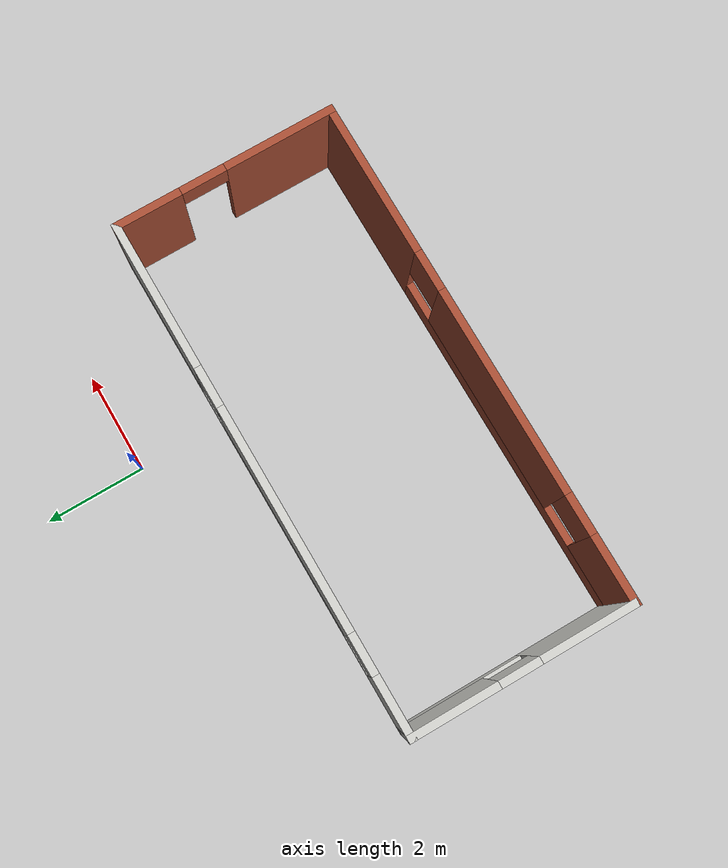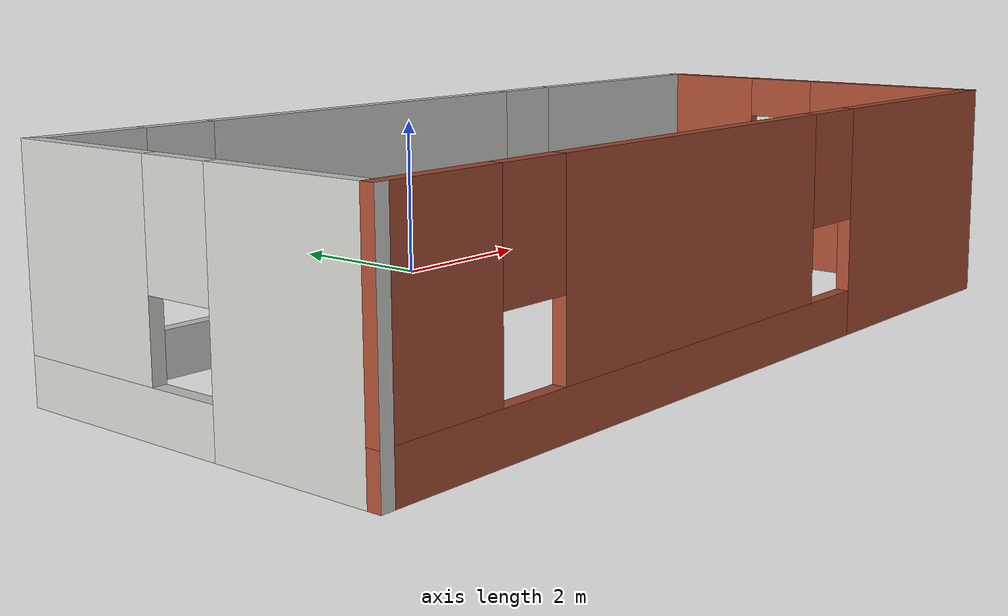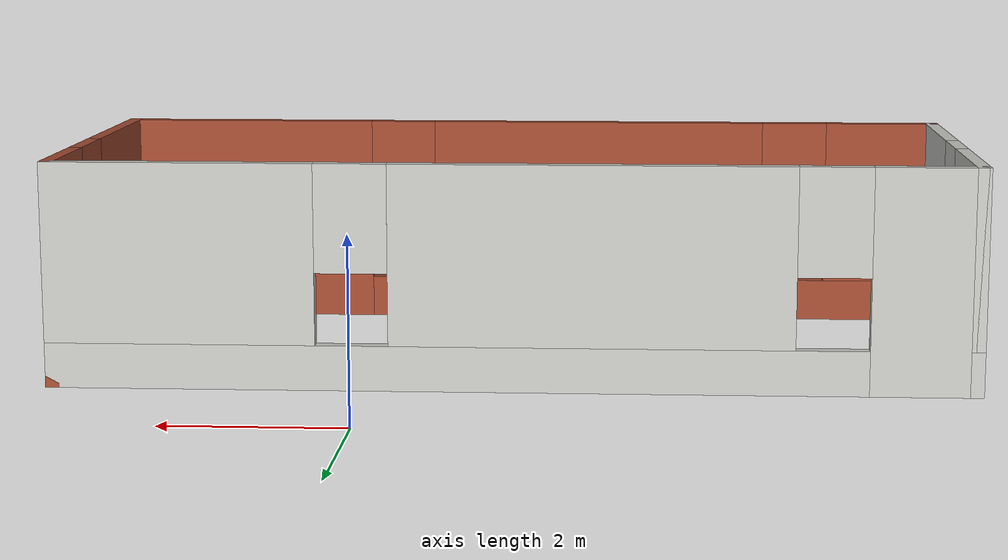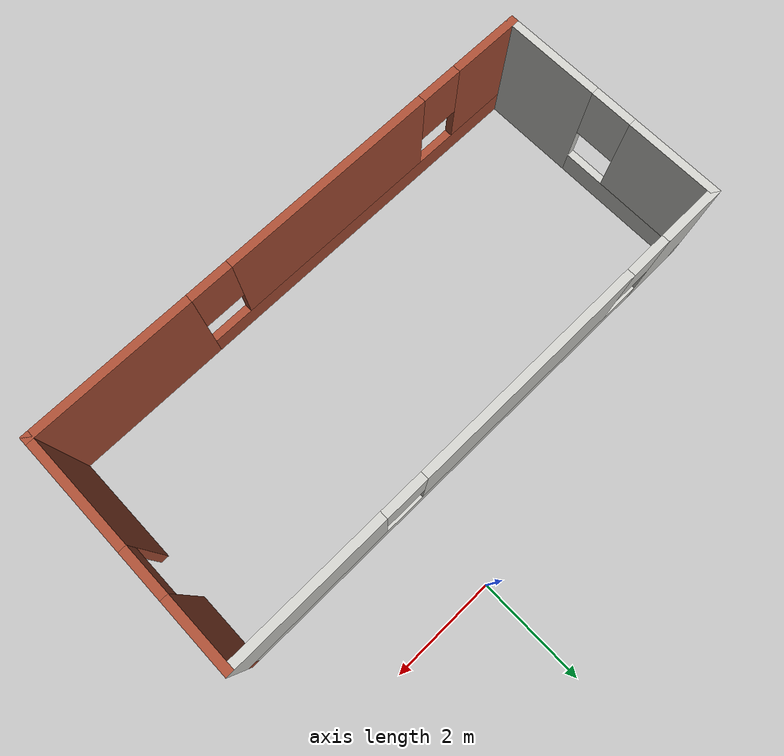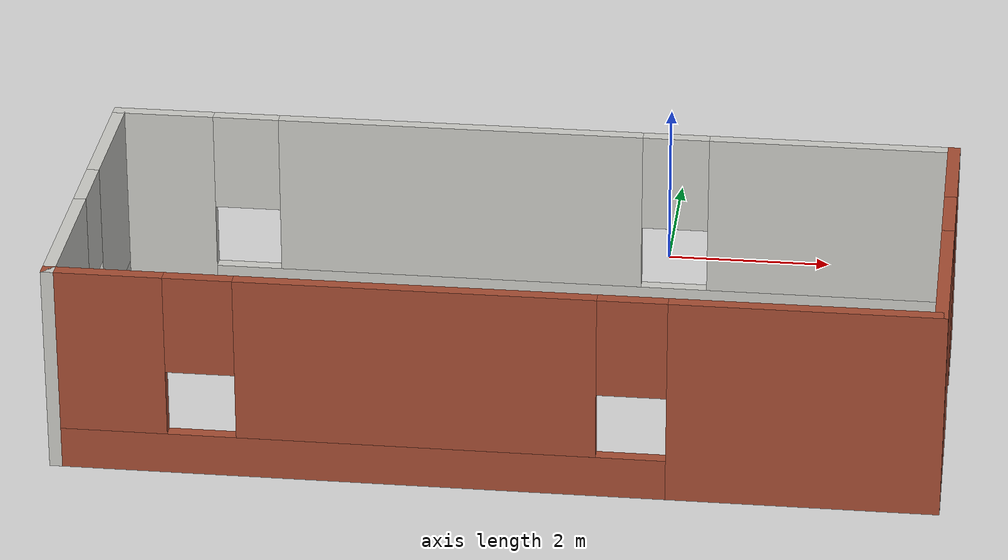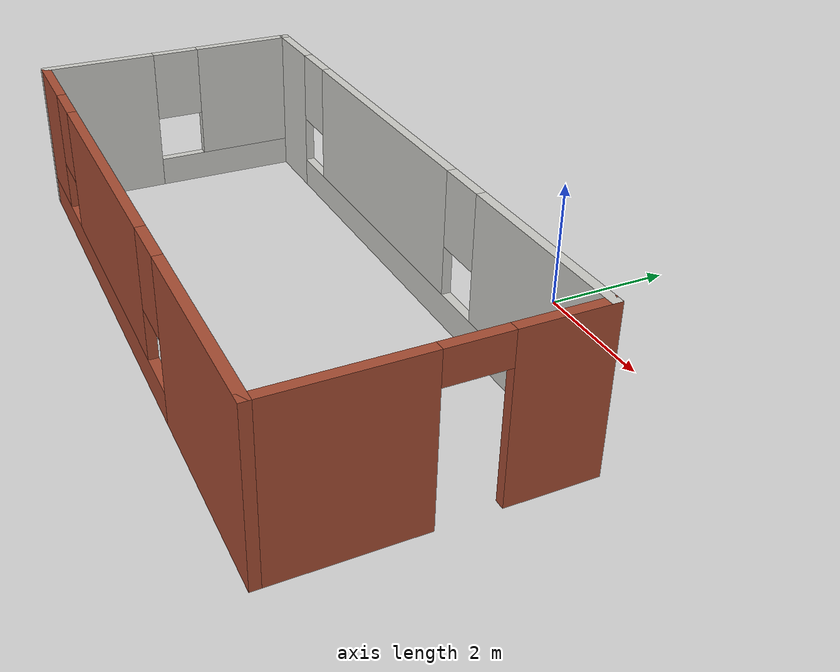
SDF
<?xml version='1.0'?>
<sdf version='1.6'>
  <model name='first_building'>
    <pose frame=''>-1.53 -3.965 0 0 -0 0</pose>
    <link name='Wall_0'>
      <pose frame=''>0 2.175 0 0 -0 0</pose>
      <visual name='Wall_0_Visual_0'>
        <pose frame=''>-4.50845 0 1.25 0 -0 0</pose>
        <geometry>
          <box>
            <size>1.2331 0.15 2.5</size>
          </box>
        </geometry>
        <material>
          <script>
            <uri>file://media/materials/scripts/gazebo.material</uri>
            <name>Gazebo/CeilingTiled</name>
          </script>
          <ambient>1 0.764706 0.305882 1</ambient>
        </material>
        <meta>
          <layer>0</layer>
        </meta>
      </visual>
      <collision name='Wall_0_Collision_0'>
        <geometry>
          <box>
            <size>1.2331 0.15 2.5</size>
          </box>
        </geometry>
        <pose frame=''>-4.50845 0 1.25 0 -0 0</pose>
      </collision>
      <visual name='Wall_0_Visual_1'>
        <pose frame=''>0.616552 0 0.25 0 -0 0</pose>
        <geometry>
          <box>
            <size>9.01689 0.15 0.5</size>
          </box>
        </geometry>
        <material>
          <script>
            <uri>file://media/materials/scripts/gazebo.material</uri>
            <name>Gazebo/CeilingTiled</name>
          </script>
          <ambient>1 0.764706 0.305882 1</ambient>
        </material>
        <meta>
          <layer>0</layer>
        </meta>
      </visual>
      <collision name='Wall_0_Collision_1'>
        <geometry>
          <box>
            <size>9.01689 0.15 0.5</size>
          </box>
        </geometry>
        <pose frame=''>0.616552 0 0.25 0 -0 0</pose>
      </collision>
      <visual name='Wall_0_Visual_2'>
        <pose frame=''>-0.880335 0 1.5 0 -0 0</pose>
        <geometry>
          <box>
            <size>4.42312 0.15 2</size>
          </box>
        </geometry>
        <material>
          <script>
            <uri>file://media/materials/scripts/gazebo.material</uri>
            <name>Gazebo/CeilingTiled</name>
          </script>
          <ambient>1 0.764706 0.305882 1</ambient>
        </material>
        <meta>
          <layer>0</layer>
        </meta>
      </visual>
      <collision name='Wall_0_Collision_2'>
        <geometry>
          <box>
            <size>4.42312 0.15 2</size>
          </box>
        </geometry>
        <pose frame=''>-0.880335 0 1.5 0 -0 0</pose>
      </collision>
      <visual name='Wall_0_Visual_3'>
        <pose frame=''>3.62811 0 1.5 0 -0 0</pose>
        <geometry>
          <box>
            <size>2.99377 0.15 2</size>
          </box>
        </geometry>
        <material>
          <script>
            <uri>file://media/materials/scripts/gazebo.material</uri>
            <name>Gazebo/CeilingTiled</name>
          </script>
          <ambient>1 0.764706 0.305882 1</ambient>
        </material>
        <meta>
          <layer>0</layer>
        </meta>
      </visual>
      <collision name='Wall_0_Collision_3'>
        <geometry>
          <box>
            <size>2.99377 0.15 2</size>
          </box>
        </geometry>
        <pose frame=''>3.62811 0 1.5 0 -0 0</pose>
      </collision>
      <visual name='Wall_0_Visual_4'>
        <pose frame=''>-3.49189 0 1.9 0 -0 0</pose>
        <geometry>
          <box>
            <size>0.8 0.15 1.2</size>
          </box>
        </geometry>
        <material>
          <script>
            <uri>file://media/materials/scripts/gazebo.material</uri>
            <name>Gazebo/CeilingTiled</name>
          </script>
          <ambient>1 0.764706 0.305882 1</ambient>
        </material>
        <meta>
          <layer>0</layer>
        </meta>
      </visual>
      <collision name='Wall_0_Collision_4'>
        <geometry>
          <box>
            <size>0.8 0.15 1.2</size>
          </box>
        </geometry>
        <pose frame=''>-3.49189 0 1.9 0 -0 0</pose>
      </collision>
      <visual name='Wall_0_Visual_5'>
        <pose frame=''>1.73123 0 1.9 0 -0 0</pose>
        <geometry>
          <box>
            <size>0.8 0.15 1.2</size>
          </box>
        </geometry>
        <material>
          <script>
            <uri>file://media/materials/scripts/gazebo.material</uri>
            <name>Gazebo/CeilingTiled</name>
          </script>
          <ambient>1 0.764706 0.305882 1</ambient>
        </material>
        <meta>
          <layer>0</layer>
        </meta>
      </visual>
      <collision name='Wall_0_Collision_5'>
        <geometry>
          <box>
            <size>0.8 0.15 1.2</size>
          </box>
        </geometry>
        <pose frame=''>1.73123 0 1.9 0 -0 0</pose>
      </collision>
    </link>
    <link name='Wall_1'>
      <pose frame=''>5.05 0 0 0 0 -1.5708</pose>
      <visual name='Wall_1_Visual_0'>
        <pose frame=''>-1.56729 0 1.25 0 -0 0</pose>
        <geometry>
          <box>
            <size>1.36542 0.15 2.5</size>
          </box>
        </geometry>
        <material>
          <script>
            <uri>file://media/materials/scripts/gazebo.material</uri>
            <name>Gazebo/Bricks</name>
          </script>
          <ambient>1 1 1 1</ambient>
        </material>
        <meta>
          <layer>0</layer>
        </meta>
      </visual>
      <collision name='Wall_1_Collision_0'>
        <geometry>
          <box>
            <size>1.36542 0.15 2.5</size>
          </box>
        </geometry>
        <pose frame=''>-1.56729 0 1.25 0 -0 0</pose>
      </collision>
      <visual name='Wall_1_Visual_1'>
        <pose frame=''>1.13271 0 1.25 0 -0 0</pose>
        <geometry>
          <box>
            <size>2.23458 0.15 2.5</size>
          </box>
        </geometry>
        <material>
          <script>
            <uri>file://media/materials/scripts/gazebo.material</uri>
            <name>Gazebo/Bricks</name>
          </script>
          <ambient>1 1 1 1</ambient>
        </material>
        <meta>
          <layer>0</layer>
        </meta>
      </visual>
      <collision name='Wall_1_Collision_1'>
        <geometry>
          <box>
            <size>2.23458 0.15 2.5</size>
          </box>
        </geometry>
        <pose frame=''>1.13271 0 1.25 0 -0 0</pose>
      </collision>
      <visual name='Wall_1_Visual_2'>
        <pose frame=''>-0.434579 0 2.25 0 -0 0</pose>
        <geometry>
          <box>
            <size>0.9 0.15 0.5</size>
          </box>
        </geometry>
        <material>
          <script>
            <uri>file://media/materials/scripts/gazebo.material</uri>
            <name>Gazebo/Bricks</name>
          </script>
          <ambient>1 1 1 1</ambient>
        </material>
        <meta>
          <layer>0</layer>
        </meta>
      </visual>
      <collision name='Wall_1_Collision_2'>
        <geometry>
          <box>
            <size>0.9 0.15 0.5</size>
          </box>
        </geometry>
        <pose frame=''>-0.434579 0 2.25 0 -0 0</pose>
      </collision>
    </link>
    <link name='Wall_2'>
      <pose frame=''>0 -2.175 0 0 -0 3.14159</pose>
      <visual name='Wall_2_Visual_0'>
        <pose frame=''>-3.56363 0 1.25 0 -0 0</pose>
        <geometry>
          <box>
            <size>3.12274 0.15 2.5</size>
          </box>
        </geometry>
        <material>
          <script>
            <uri>file://media/materials/scripts/gazebo.material</uri>
            <name>Gazebo/Bricks</name>
          </script>
          <ambient>1 1 1 1</ambient>
        </material>
        <meta>
          <layer>0</layer>
        </meta>
      </visual>
      <collision name='Wall_2_Collision_0'>
        <geometry>
          <box>
            <size>3.12274 0.15 2.5</size>
          </box>
        </geometry>
        <pose frame=''>-3.56363 0 1.25 0 -0 0</pose>
      </collision>
      <visual name='Wall_2_Visual_1'>
        <pose frame=''>1.56137 0 0.25 0 -0 0</pose>
        <geometry>
          <box>
            <size>7.12726 0.15 0.5</size>
          </box>
        </geometry>
        <material>
          <script>
            <uri>file://media/materials/scripts/gazebo.material</uri>
            <name>Gazebo/Bricks</name>
          </script>
          <ambient>1 1 1 1</ambient>
        </material>
        <meta>
          <layer>0</layer>
        </meta>
      </visual>
      <collision name='Wall_2_Collision_1'>
        <geometry>
          <box>
            <size>7.12726 0.15 0.5</size>
          </box>
        </geometry>
        <pose frame=''>1.56137 0 0.25 0 -0 0</pose>
      </collision>
      <visual name='Wall_2_Visual_2'>
        <pose frame=''>0.864214 0 1.5 0 -0 0</pose>
        <geometry>
          <box>
            <size>4.13295 0.15 2</size>
          </box>
        </geometry>
        <material>
          <script>
            <uri>file://media/materials/scripts/gazebo.material</uri>
            <name>Gazebo/Bricks</name>
          </script>
          <ambient>1 1 1 1</ambient>
        </material>
        <meta>
          <layer>0</layer>
        </meta>
      </visual>
      <collision name='Wall_2_Collision_2'>
        <geometry>
          <box>
            <size>4.13295 0.15 2</size>
          </box>
        </geometry>
        <pose frame=''>0.864214 0 1.5 0 -0 0</pose>
      </collision>
      <visual name='Wall_2_Visual_3'>
        <pose frame=''>4.42784 0 1.5 0 -0 0</pose>
        <geometry>
          <box>
            <size>1.39431 0.15 2</size>
          </box>
        </geometry>
        <material>
          <script>
            <uri>file://media/materials/scripts/gazebo.material</uri>
            <name>Gazebo/Bricks</name>
          </script>
          <ambient>1 1 1 1</ambient>
        </material>
        <meta>
          <layer>0</layer>
        </meta>
      </visual>
      <collision name='Wall_2_Collision_3'>
        <geometry>
          <box>
            <size>1.39431 0.15 2</size>
          </box>
        </geometry>
        <pose frame=''>4.42784 0 1.5 0 -0 0</pose>
      </collision>
      <visual name='Wall_2_Visual_4'>
        <pose frame=''>-1.60226 0 1.9 0 -0 0</pose>
        <geometry>
          <box>
            <size>0.8 0.15 1.2</size>
          </box>
        </geometry>
        <material>
          <script>
            <uri>file://media/materials/scripts/gazebo.material</uri>
            <name>Gazebo/Bricks</name>
          </script>
          <ambient>1 1 1 1</ambient>
        </material>
        <meta>
          <layer>0</layer>
        </meta>
      </visual>
      <collision name='Wall_2_Collision_4'>
        <geometry>
          <box>
            <size>0.8 0.15 1.2</size>
          </box>
        </geometry>
        <pose frame=''>-1.60226 0 1.9 0 -0 0</pose>
      </collision>
      <visual name='Wall_2_Visual_5'>
        <pose frame=''>3.33069 0 1.9 0 -0 0</pose>
        <geometry>
          <box>
            <size>0.8 0.15 1.2</size>
          </box>
        </geometry>
        <material>
          <script>
            <uri>file://media/materials/scripts/gazebo.material</uri>
            <name>Gazebo/Bricks</name>
          </script>
          <ambient>1 1 1 1</ambient>
        </material>
        <meta>
          <layer>0</layer>
        </meta>
      </visual>
      <collision name='Wall_2_Collision_5'>
        <geometry>
          <box>
            <size>0.8 0.15 1.2</size>
          </box>
        </geometry>
        <pose frame=''>3.33069 0 1.9 0 -0 0</pose>
      </collision>
    </link>
    <link name='Wall_3'>
      <pose frame=''>-5.05 0 0 0 -0 1.5708</pose>
      <visual name='Wall_3_Visual_0'>
        <pose frame=''>-1.28504 0 1.25 0 -0 0</pose>
        <geometry>
          <box>
            <size>1.92992 0.15 2.5</size>
          </box>
        </geometry>
        <material>
          <script>
            <uri>file://media/materials/scripts/gazebo.material</uri>
            <name>Gazebo/CeilingTiled</name>
          </script>
          <ambient>1 0.764706 0.305882 1</ambient>
        </material>
        <meta>
          <layer>0</layer>
        </meta>
      </visual>
      <collision name='Wall_3_Collision_0'>
        <geometry>
          <box>
            <size>1.92992 0.15 2.5</size>
          </box>
        </geometry>
        <pose frame=''>-1.28504 0 1.25 0 -0 0</pose>
      </collision>
      <visual name='Wall_3_Visual_1'>
        <pose frame=''>0.964962 0 0.25 0 -0 0</pose>
        <geometry>
          <box>
            <size>2.57008 0.15 0.5</size>
          </box>
        </geometry>
        <material>
          <script>
            <uri>file://media/materials/scripts/gazebo.material</uri>
            <name>Gazebo/CeilingTiled</name>
          </script>
          <ambient>1 0.764706 0.305882 1</ambient>
        </material>
        <meta>
          <layer>0</layer>
        </meta>
      </visual>
      <collision name='Wall_3_Collision_1'>
        <geometry>
          <box>
            <size>2.57008 0.15 0.5</size>
          </box>
        </geometry>
        <pose frame=''>0.964962 0 0.25 0 -0 0</pose>
      </collision>
      <visual name='Wall_3_Visual_2'>
        <pose frame=''>1.36496 0 1.5 0 -0 0</pose>
        <geometry>
          <box>
            <size>1.77008 0.15 2</size>
          </box>
        </geometry>
        <material>
          <script>
            <uri>file://media/materials/scripts/gazebo.material</uri>
            <name>Gazebo/CeilingTiled</name>
          </script>
          <ambient>1 0.764706 0.305882 1</ambient>
        </material>
        <meta>
          <layer>0</layer>
        </meta>
      </visual>
      <collision name='Wall_3_Collision_2'>
        <geometry>
          <box>
            <size>1.77008 0.15 2</size>
          </box>
        </geometry>
        <pose frame=''>1.36496 0 1.5 0 -0 0</pose>
      </collision>
      <visual name='Wall_3_Visual_3'>
        <pose frame=''>0.079923 0 1.9 0 -0 0</pose>
        <geometry>
          <box>
            <size>0.8 0.15 1.2</size>
          </box>
        </geometry>
        <material>
          <script>
            <uri>file://media/materials/scripts/gazebo.material</uri>
            <name>Gazebo/CeilingTiled</name>
          </script>
          <ambient>1 0.764706 0.305882 1</ambient>
        </material>
        <meta>
          <layer>0</layer>
        </meta>
      </visual>
      <collision name='Wall_3_Collision_3'>
        <geometry>
          <box>
            <size>0.8 0.15 1.2</size>
          </box>
        </geometry>
        <pose frame=''>0.079923 0 1.9 0 -0 0</pose>
      </collision>
    </link>
    <static>1</static>
  </model>
</sdf>
